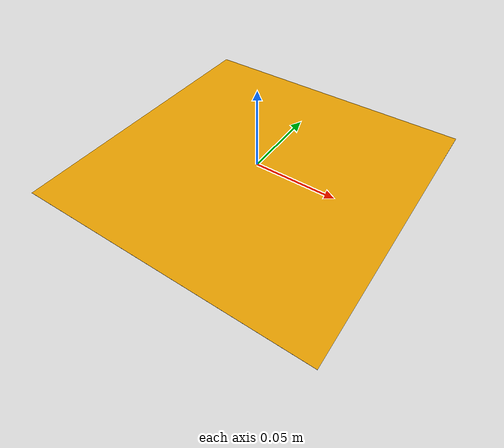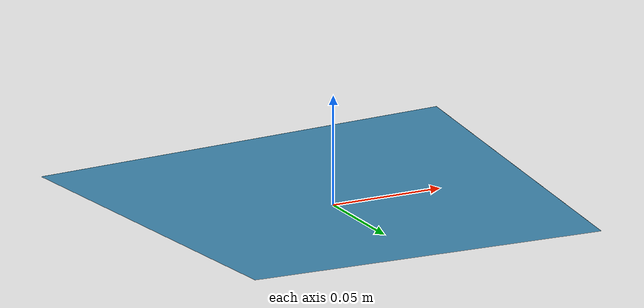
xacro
<?xml version="1.0" ?>
<robot name="aruco_visual_marker_7" xmlns:xacro="http://www.ros.org/wiki/xacro">
  <joint name="aruco_visual_marker_7__marker_JOINT_marker_pad" type="fixed">
    <parent link="aruco_visual_marker_7__marker"/>
    <child link="aruco_visual_marker_7__marker_pad"/>
    <origin rpy="0  0  0" xyz="0.00000000e+00   0.00000000e+00  -1.00000000e-05"/>
    <axis xyz="0  0  1"/>
    <limit effort="0.0" lower="0.0" upper="0.0" velocity="0.0"/>
  </joint>
  <link name="aruco_visual_marker_7__marker">
    <inertial>
      <mass value="0"/>
      <origin rpy="0  0  0" xyz="0  0  0"/>
      <inertia ixx="0" ixy="0" ixz="0" iyy="0" iyz="0" izz="0"/>
    </inertial>
    <collision name="aruco_visual_marker_7__collision">
      <origin rpy="0  0  0" xyz="0  0  0"/>
      <geometry>
        <box size="0.1778 0.1778 1e-05"/>
      </geometry>
    </collision>
    <visual name="aruco_visual_marker_7__visual">
      <origin rpy="0  0  0" xyz="0  0  0"/>
      <geometry>
        <box size="0.1778 0.1778 1e-5"/>
      </geometry>
    </visual>
  </link>
  <link name="aruco_visual_marker_7__marker_pad">
    <inertial>
      <mass value="0"/>
      <origin rpy="0  0  0" xyz="0  0  0"/>
      <inertia ixx="0" ixy="0" ixz="0" iyy="0" iyz="0" izz="0"/>
    </inertial>
    <collision name="aruco_visual_marker_7__collision">
      <origin rpy="0  0  0" xyz="0  0  0"/>
      <geometry>
        <box size="0.1778 0.1778 1e-5"/>
      </geometry>
    </collision>
    <visual name="aruco_visual_marker_7__visual">
      <origin rpy="0  0  0" xyz="0  0  0"/>
      <geometry>
        <box size="0.1778 0.1778 1e-5"/>
      </geometry>
    </visual>
  </link>
</robot>
